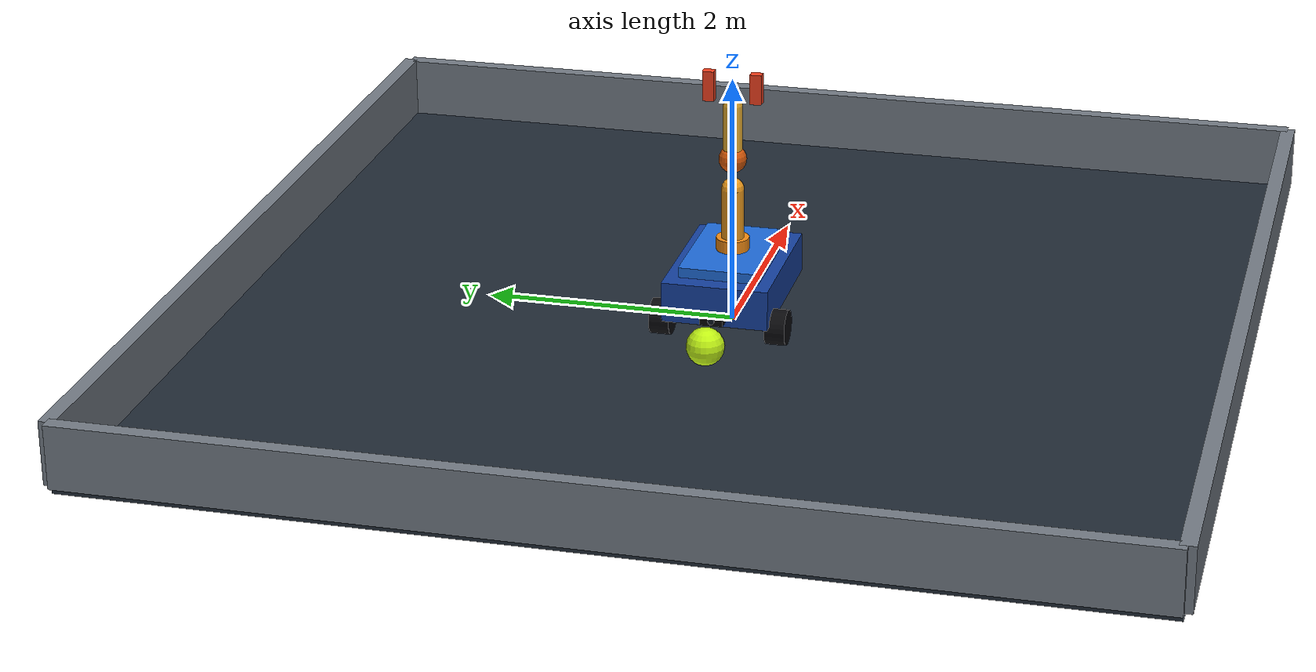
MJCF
<mujoco model="four_wheel_arm_robot">
  <compiler angle="radian" autolimits="true"/>
  <option timestep="0.002" gravity="0 0 -9.81" integrator="RK4" iterations="80"/>

  <visual>
    <headlight diffuse="0.8 0.8 0.8" ambient="0.35 0.35 0.35" specular="0.2 0.2 0.2"/>
    <global offwidth="1280" offheight="720"/>
  </visual>

  <asset>
    <texture name="floor_texture" type="2d" builtin="checker" width="512" height="512" rgb1="0.16 0.20 0.25" rgb2="0.10 0.13 0.17"/>
    <material name="floor_material" texture="floor_texture" texrepeat="12 12" reflectance="0.15"/>
  </asset>

  <default>
    <joint damping="0.25" armature="0.01"/>
    <geom contype="1" conaffinity="1" friction="0.8 0.02 0.01" solref="0.01 1" solimp="0.9 0.95 0.01"/>
    <motor ctrllimited="true" ctrlrange="-12 12"/>
  </default>

  <worldbody>
    <light name="key" pos="2 -3 5" dir="-0.2 0.3 -1" diffuse="0.9 0.9 0.9"/>
    <geom name="floor" type="box" pos="0 0 -0.03" size="4.0 4.0 0.03" material="floor_material" friction="2.2 0.35 0.08"/>
    <geom name="front_wall" type="box" pos="-4.0 0 0.25" size="0.06 4.0 0.25" rgba="0.45 0.48 0.52 1"/>
    <geom name="rear_wall" type="box" pos="4.0 0 0.25" size="0.06 4.0 0.25" rgba="0.45 0.48 0.52 1"/>
    <geom name="left_wall" type="box" pos="0 4.0 0.25" size="4.0 0.06 0.25" rgba="0.45 0.48 0.52 1"/>
    <geom name="right_wall" type="box" pos="0 -4.0 0.25" size="4.0 0.06 0.25" rgba="0.45 0.48 0.52 1"/>

    <body name="robot" pos="0 0 0.36">
      <freejoint name="robot_free"/>
      <geom name="chassis" type="box" size="0.62 0.42 0.16" rgba="0.08 0.25 0.62 1" mass="8"/>
      <geom name="top_plate" type="box" pos="0 0 0.2" size="0.48 0.32 0.04" rgba="0.12 0.42 0.85 1" mass="1"/>
      <body name="front_camera_mount" pos="-0.66 0 -0.08">
        <geom name="front_camera_body" type="box" size="0.055 0.09 0.04" rgba="0.02 0.02 0.025 1" mass="0.08" contype="0" conaffinity="0"/>
        <geom name="front_camera_lens" type="cylinder" pos="-0.055 0 0" quat="0.7071 0 0.7071 0" size="0.025 0.012" rgba="0.05 0.08 0.12 1" mass="0.01" contype="0" conaffinity="0"/>
        <camera name="front_camera" pos="-0.075 0 0" xyaxes="0 1 0 0 0 1" fovy="75"/>
      </body>

      <body name="front_left_wheel" pos="-0.43 0.46 -0.2" quat="0.7071 0.7071 0 0">
        <joint name="front_left_wheel_joint" type="hinge" axis="0 0 1"/>
        <geom name="front_left_wheel_geom" type="cylinder" size="0.14 0.08" rgba="0.04 0.04 0.05 1" mass="0.4" friction="0.45 0.01 0.01"/>
      </body>
      <body name="front_right_wheel" pos="-0.43 -0.46 -0.2" quat="0.7071 0.7071 0 0">
        <joint name="front_right_wheel_joint" type="hinge" axis="0 0 1"/>
        <geom name="front_right_wheel_geom" type="cylinder" size="0.14 0.08" rgba="0.04 0.04 0.05 1" mass="0.4" friction="0.45 0.01 0.01"/>
      </body>
      <body name="rear_caster" pos="0.48 0 -0.20">
        <joint name="caster_swivel" type="hinge" axis="0 0 1" damping="0.02"/>
        <geom name="caster_fork" type="box" pos="0 0 0.08" size="0.045 0.045 0.08" rgba="0.25 0.28 0.32 1" mass="0.03" contype="0" conaffinity="0"/>
        <body name="caster_wheel" pos="0 0 -0.08" quat="0.7071 0.7071 0 0">
          <joint name="caster_roll" type="hinge" axis="0 0 1" damping="0.01"/>
          <geom name="caster_wheel_geom" type="cylinder" size="0.07 0.035" rgba="0.06 0.06 0.07 1" mass="0.1" friction="0.04 0.001 0.001"/>
        </body>
      </body>

      <body name="shoulder_yaw" pos="0 0 0.24">
        <joint name="shoulder_joint" type="hinge" axis="0 1 0" range="-1.5 1.5"/>
        <geom name="shoulder_motor" type="cylinder" size="0.13 0.1" rgba="0.95 0.55 0.08 1" mass="0.7"/>
        <body name="upper_arm" pos="0.0 0 0.25">
          <geom name="upper_arm_link" type="capsule" fromto="0 0 -0.25 0 0 0.25" size="0.09" rgba="0.95 0.62 0.12 1" mass="0.35"/>
          <body name="elbow" pos="0 0 0.50">
            <joint name="elbow_joint" type="hinge" axis="0 1 0" range="-2.4 0.4"/>
            <geom name="elbow_motor" type="sphere" size="0.11" rgba="0.85 0.35 0.04 1" mass="0.45"/>
            <body name="forearm" pos="0 0 0.22">
              <geom name="forearm_link" type="capsule" fromto="0 0 -0.22 0 0 0.22" size="0.075" rgba="0.96 0.72 0.20 1" mass="0.25"/>
              <body name="gripper_tip" pos="0 0 0.45">
                <body name="left_finger" pos="0 0.1425 0">
                  <joint name="gripper_joint" type="slide" axis="0 1 0" range="0 0.10"/>
                  <geom name="left_finger_geom" type="box" pos="0 0.045 -0.08" size="0.035 0.045 0.12" rgba="0.95 0.25 0.12 1" mass="0.12"/>
                </body>
                <body name="right_finger" pos="0 -0.1425 0">
                  <geom name="right_finger_geom" type="box" pos="0 -0.045 -0.08" size="0.035 0.045 0.12" rgba="0.95 0.25 0.12 1" mass="0.12"/>
                </body>
              </body>
            </body>
          </body>
        </body>
      </body>
    </body>

    <body name="tennis_ball" pos="-0.90 0 0.15">
      <freejoint name="ball_free"/>
      <geom name="ball_geom" type="sphere" size="0.15" rgba="0.76 0.96 0.08 1" mass="0.04" friction="1.8 0.25 0.06"/>
    </body>
  </worldbody>

  <contact>
    <pair name="ball_floor" geom1="floor" geom2="ball_geom" condim="3" friction="2.2 2.2"
          solref="0.01 1" solimp="0.9 0.95 0.01"/>
  </contact>

  <actuator>
    <velocity name="front_left_drive" joint="front_left_wheel_joint" kv="2.5" ctrlrange="-8 8"/>
    <velocity name="front_right_drive" joint="front_right_wheel_joint" kv="2.5" ctrlrange="-8 8"/>
    <position name="shoulder_servo" joint="shoulder_joint" kp="350" kv="35" ctrlrange="-1.5 1.5"/>
    <position name="elbow_servo" joint="elbow_joint" kp="300" kv="30" ctrlrange="-2.4 0.4"/>
    <position name="gripper_servo" joint="gripper_joint" kp="180" kv="18" ctrlrange="0 0.10"/>
  </actuator>

  <equality>
    <weld name="ball_grasp" body1="gripper_tip" body2="tennis_ball" active="false" solref="0.01 1" solimp="0.95 0.99 0.001"/>
  </equality>
</mujoco>
